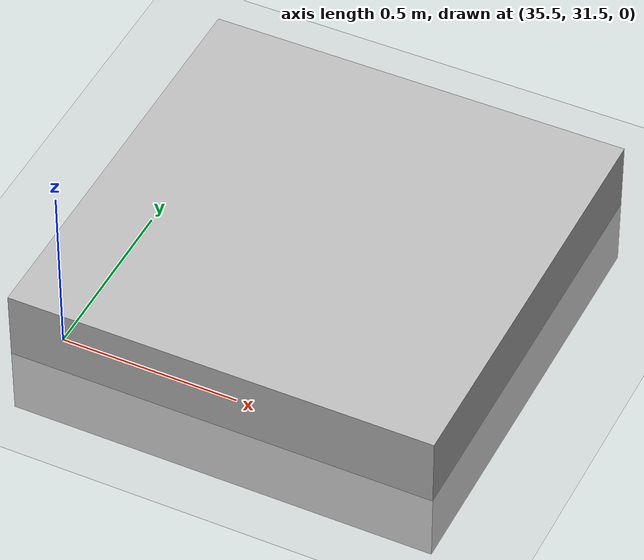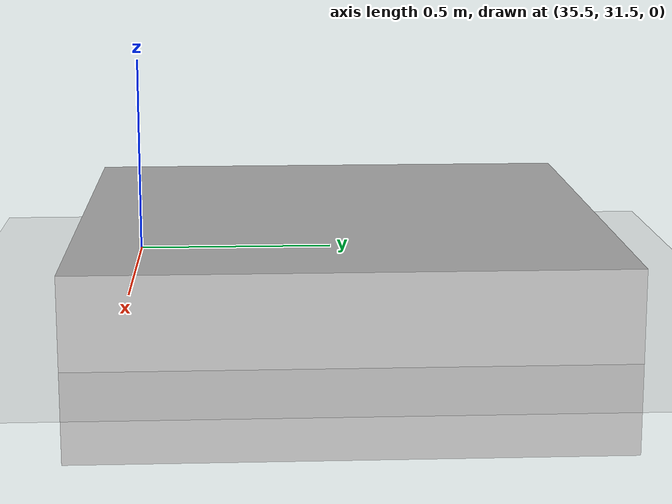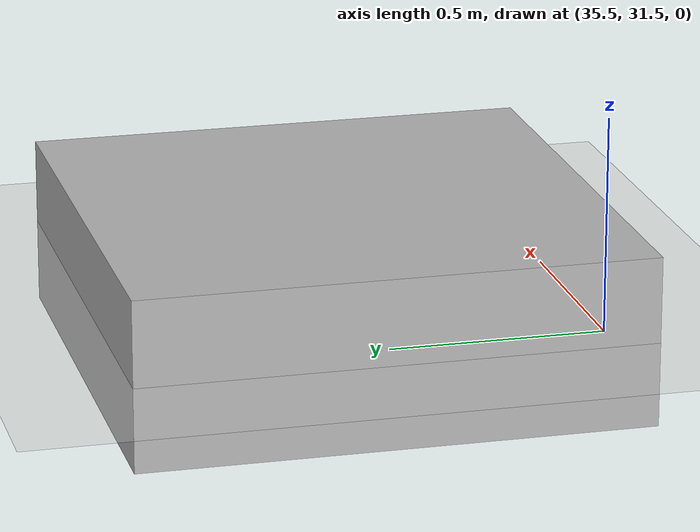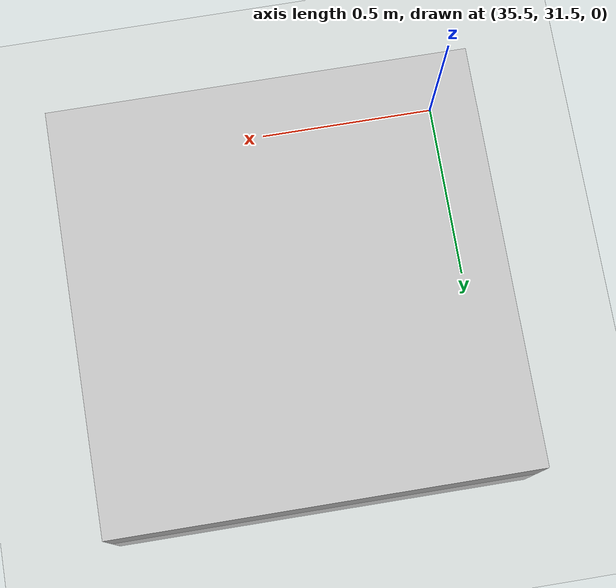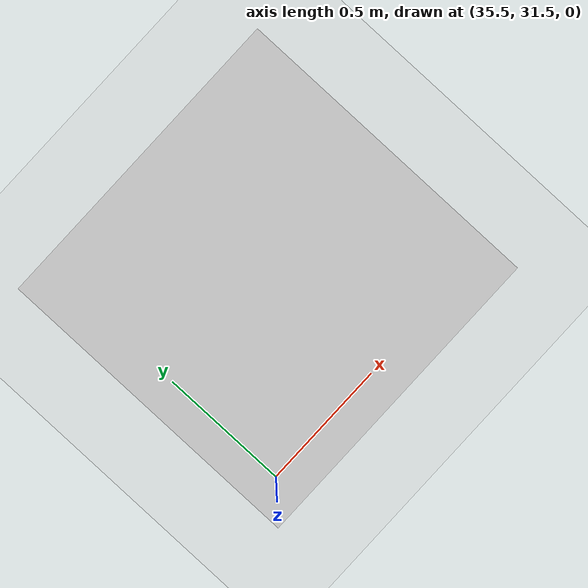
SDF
<?xml version="1.0" ?>
<sdf version="1.5">
  <world name="default">
    <!-- A global light source -->
    <include>
      <uri>model://sun</uri>
    </include>
    <include>
      <uri>model://marker</uri>
      <pose>36 32 0 0 0 0</pose>
    </include>

    <!-- A ground plane -->
    <model name="ground_plane">
      <static>true</static>
      <link name="link">
        <collision name="collision">
          <geometry>
            <plane>
              <normal>0 0 1</normal>
              <size>5000 5000</size>
            </plane>
          </geometry>
          <surface>
            <friction>
              <ode>
                <mu>1</mu>
                <mu2>1</mu2>
              </ode>
            </friction>
          </surface>
        </collision>
        <visual name="runway">
          <pose>000 0 0.005 0 0 -1.5707</pose>
          <cast_shadows>false</cast_shadows>
          <geometry>
            <plane>
              <normal>0 0 1</normal>
              <size>1829 45</size>
            </plane>
          </geometry>
          <material>
            <script>
              <uri>file://media/materials/scripts/gazebo.material</uri>
              <name>Gazebo/Runway</name>
            </script>
          </material>
        </visual>

        <visual name="grass">
          <pose>0 0 -0.1 0 0 0</pose>
          <cast_shadows>false</cast_shadows>
          <geometry>
            <plane>
              <normal>0 0 1</normal>
              <size>5000 5000</size>
            </plane>
          </geometry>
          <material>
            <script>
              <uri>file://media/materials/scripts/gazebo.material</uri>
              <name>Gazebo/Grass</name>
            </script>
          </material>
        </visual>

      </link>
    </model>
    <physics name='default_physics' default='0' type='ode'>
      <gravity>0 0 -9.8066</gravity>
      <ode>
        <solver>
          <type>quick</type>
          <iters>10</iters>
          <sor>1.3</sor>
          <use_dynamic_moi_rescaling>0</use_dynamic_moi_rescaling>
        </solver>
        <constraints>
          <cfm>0</cfm>
          <erp>0.2</erp>
          <contact_max_correcting_vel>100</contact_max_correcting_vel>
          <contact_surface_layer>0.001</contact_surface_layer>
        </constraints>
      </ode>
      <max_step_size>0.004</max_step_size>
      <real_time_factor>1</real_time_factor>
      <real_time_update_rate>250</real_time_update_rate>
      <magnetic_field>6.0e-6 2.3e-5 -4.2e-5</magnetic_field>
    </physics>
  </world>
</sdf>

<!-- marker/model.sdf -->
<sdf version="1.6">
  <model name="box_target_green">
    <pose>0 0 -0.18 0 0 0</pose>
    <static>true</static>
    <link name="link">
      <collision name="collision">
        <geometry>
          <box>
            <size>0.25 0.25 1</size>
          </box>
        </geometry>
      </collision>

      <visual name="visual">
        <geometry>
          <mesh>
            <uri>model://marker/meshes/mesh.dae</uri>
          </mesh>
        </geometry>
      </visual>
    </link>
  </model>
</sdf>
